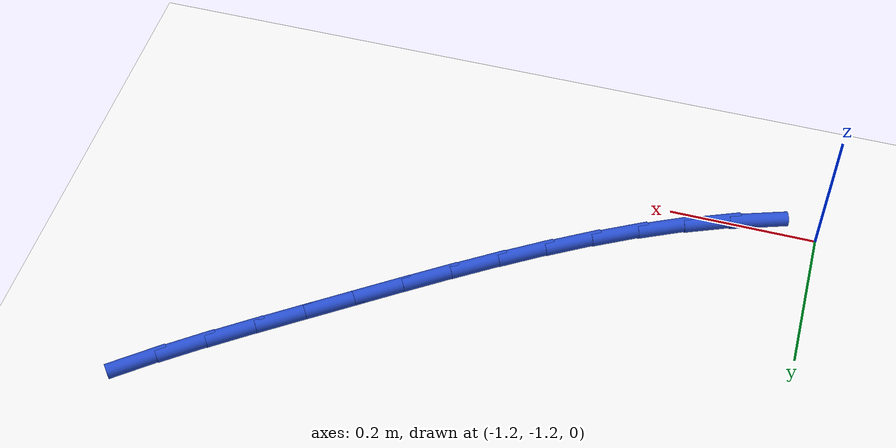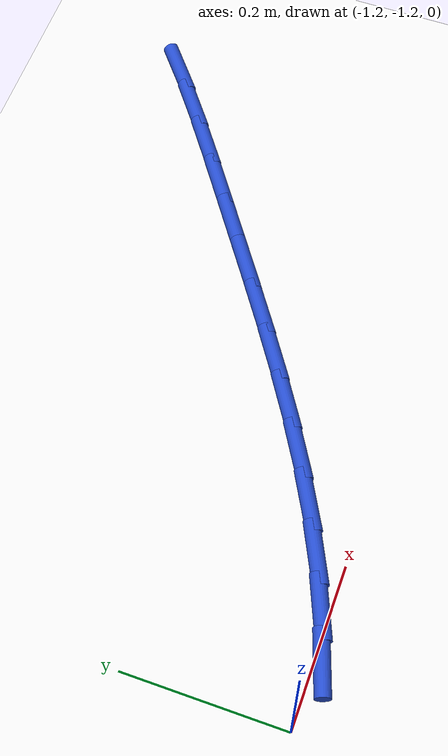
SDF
<sdf version="1.6">
 <world name="default">
  <model name="ground_plane">
   <static>1</static>
   <link name="link">
    <collision name="collision">
     <geometry><plane><normal>0 0 1</normal><size>100 100</size></plane></geometry>
     <surface><friction><ode><mu>100</mu><mu2>50</mu2></ode></friction></surface>
    </collision>
    <visual name="visual">
     <cast_shadows>0</cast_shadows>
     <geometry><plane><normal>0 0 1</normal><size>100 100</size></plane></geometry>
     <material>
      <script><uri>file://media/materials/scripts/gazebo.material</uri><name>Gazebo/WhiteGlow</name></script>
     </material>
    </visual>
   </link>
  </model>
  <model name="line">
   <link name="link_83">
    <pose>-1.119134937948675 -1.2088726850904108 0.01 0 1.57 0.32975575196583207</pose>
    <collision name="collision">
     <geometry><cylinder><radius>0.01</radius><length>0.08</length></cylinder></geometry>
    </collision>
    <visual name="visual">
     <material>
      <script><name>Gazebo/Blue</name><uri>file://media/materials/scripts/gazebo.material</uri></script>
     </material>
     <geometry><cylinder><radius>0.01</radius><length>0.08</length></cylinder></geometry>
    </visual>
   </link>
   <link name="link_84">
    <pose>-1.0590685644712348 -1.1883148494556204 0.01 0 1.57 0.39412392174519206</pose>
    <collision name="collision">
     <geometry><cylinder><radius>0.01</radius><length>0.08</length></cylinder></geometry>
    </collision>
    <visual name="visual">
     <material>
      <script><name>Gazebo/Blue</name><uri>file://media/materials/scripts/gazebo.material</uri></script>
     </material>
     <geometry><cylinder><radius>0.01</radius><length>0.08</length></cylinder></geometry>
    </visual>
   </link>
   <link name="link_85">
    <pose>-0.9998746804185479 -1.1636970688675956 0.01 0 1.57 0.4490494347807749</pose>
    <collision name="collision">
     <geometry><cylinder><radius>0.01</radius><length>0.08</length></cylinder></geometry>
    </collision>
    <visual name="visual">
     <material>
      <script><name>Gazebo/Blue</name><uri>file://media/materials/scripts/gazebo.material</uri></script>
     </material>
     <geometry><cylinder><radius>0.01</radius><length>0.08</length></cylinder></geometry>
    </visual>
   </link>
   <link name="link_86">
    <pose>-0.9414818898530563 -1.1355585622742759 0.01 0 1.57 0.4948907888257846</pose>
    <collision name="collision">
     <geometry><cylinder><radius>0.01</radius><length>0.08</length></cylinder></geometry>
    </collision>
    <visual name="visual">
     <material>
      <script><name>Gazebo/Blue</name><uri>file://media/materials/scripts/gazebo.material</uri></script>
     </material>
     <geometry><cylinder><radius>0.01</radius><length>0.08</length></cylinder></geometry>
    </visual>
   </link>
   <link name="link_87">
    <pose>-0.8838187968371979 -1.1044385486235992 0.01 0 1.57 0.5321158922803214</pose>
    <collision name="collision">
     <geometry><cylinder><radius>0.01</radius><length>0.08</length></cylinder></geometry>
    </collision>
    <visual name="visual">
     <material>
      <script><name>Gazebo/Blue</name><uri>file://media/materials/scripts/gazebo.material</uri></script>
     </material>
     <geometry><cylinder><radius>0.01</radius><length>0.08</length></cylinder></geometry>
    </visual>
   </link>
   <link name="link_88">
    <pose>-0.8268140054334144 -1.0708762468635051 0.01 0 1.57 0.5611977138747695</pose>
    <collision name="collision">
     <geometry><cylinder><radius>0.01</radius><length>0.08</length></cylinder></geometry>
    </collision>
    <visual name="visual">
     <material>
      <script><name>Gazebo/Blue</name><uri>file://media/materials/scripts/gazebo.material</uri></script>
     </material>
     <geometry><cylinder><radius>0.01</radius><length>0.08</length></cylinder></geometry>
    </visual>
   </link>
   <link name="link_89">
    <pose>-0.770396119704144 -1.0354108759419318 0.01 0 1.57 0.5825458372604615</pose>
    <collision name="collision">
     <geometry><cylinder><radius>0.01</radius><length>0.08</length></cylinder></geometry>
    </collision>
    <visual name="visual">
     <material>
      <script><name>Gazebo/Blue</name><uri>file://media/materials/scripts/gazebo.material</uri></script>
     </material>
     <geometry><cylinder><radius>0.01</radius><length>0.08</length></cylinder></geometry>
    </visual>
   </link>
   <link name="link_90">
    <pose>-0.7144937437118278 -0.9985816548068187 0.01 0 1.57 0.5964640522810626</pose>
    <collision name="collision">
     <geometry><cylinder><radius>0.01</radius><length>0.08</length></cylinder></geometry>
    </collision>
    <visual name="visual">
     <material>
      <script><name>Gazebo/Blue</name><uri>file://media/materials/scripts/gazebo.material</uri></script>
     </material>
     <geometry><cylinder><radius>0.01</radius><length>0.08</length></cylinder></geometry>
    </visual>
   </link>
   <link name="link_91">
    <pose>-0.6590354815189043 -0.9609278024061038 0.01 0 1.57 0.6031245272221918</pose>
    <collision name="collision">
     <geometry><cylinder><radius>0.01</radius><length>0.08</length></cylinder></geometry>
    </collision>
    <visual name="visual">
     <material>
      <script><name>Gazebo/Blue</name><uri>file://media/materials/scripts/gazebo.material</uri></script>
     </material>
     <geometry><cylinder><radius>0.01</radius><length>0.08</length></cylinder></geometry>
    </visual>
   </link>
   <link name="link_92">
    <pose>-0.603949937187815 -0.9229885376877269 0.01 0 1.57 0.6032975890921664</pose>
    <collision name="collision">
     <geometry><cylinder><radius>0.01</radius><length>0.08</length></cylinder></geometry>
    </collision>
    <visual name="visual">
     <material>
      <script><name>Gazebo/Blue</name><uri>file://media/materials/scripts/gazebo.material</uri></script>
     </material>
     <geometry><cylinder><radius>0.01</radius><length>0.08</length></cylinder></geometry>
    </visual>
   </link>
   <link name="link_93">
    <pose>-0.5491875271624753 -0.8852578518812931 0.01 0 1.57 0.6062757636070745</pose>
    <collision name="collision">
     <geometry><cylinder><radius>0.01</radius><length>0.08</length></cylinder></geometry>
    </collision>
    <visual name="visual">
     <material>
      <script><name>Gazebo/Blue</name><uri>file://media/materials/scripts/gazebo.material</uri></script>
     </material>
     <geometry><cylinder><radius>0.01</radius><length>0.08</length></cylinder></geometry>
    </visual>
   </link>
   <link name="link_94">
    <pose>-0.49497114132964415 -0.8476647657138239 0.01 0 1.57 0.6185816649000861</pose>
    <collision name="collision">
     <geometry><cylinder><radius>0.01</radius><length>0.08</length></cylinder></geometry>
    </collision>
    <visual name="visual">
     <material>
      <script><name>Gazebo/Blue</name><uri>file://media/materials/scripts/gazebo.material</uri></script>
     </material>
     <geometry><cylinder><radius>0.01</radius><length>0.08</length></cylinder></geometry>
    </visual>
   </link>
   <link name="link_95">
    <pose>-0.44170887285428717 -0.8097542830772291 0.01 0 1.57 0.6406316938643936</pose>
    <collision name="collision">
     <geometry><cylinder><radius>0.01</radius><length>0.08</length></cylinder></geometry>
    </collision>
    <visual name="visual">
     <material>
      <script><name>Gazebo/Blue</name><uri>file://media/materials/scripts/gazebo.material</uri></script>
     </material>
     <geometry><cylinder><radius>0.01</radius><length>0.08</length></cylinder></geometry>
    </visual>
   </link>
   <link name="link_96">
    <pose>-0.38981235352458043 -0.7710640705695132 0.01 0 1.57 0.6727542877082834</pose>
    <collision name="collision">
     <geometry><cylinder><radius>0.01</radius><length>0.08</length></cylinder></geometry>
    </collision>
    <visual name="visual">
     <material>
      <script><name>Gazebo/Blue</name><uri>file://media/materials/scripts/gazebo.material</uri></script>
     </material>
     <geometry><cylinder><radius>0.01</radius><length>0.08</length></cylinder></geometry>
    </visual>
   </link>
  </model>
 </world>
</sdf>
